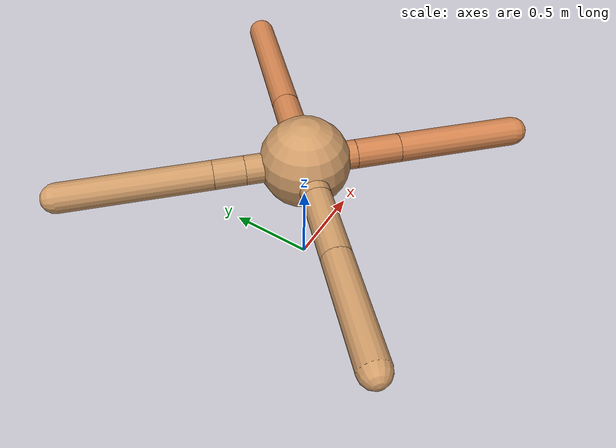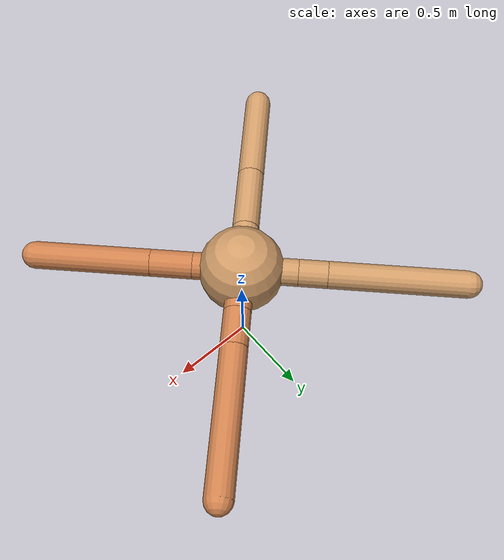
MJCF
<mujoco model="ant">
  <compiler angle="degree" coordinate="local" inertiafromgeom="true" />
  <option integrator="RK4" timestep="0.01" />
  <custom>
    <numeric data="0.0 0.0 0.55 1.0 0.0 0.0 0.0 0.0 1.0 0.0 -1.0 0.0 -1.0 0.0 1.0" name="init_qpos" />
  </custom>
  <default>
    <joint armature="1" damping="1" limited="true" />
    <geom conaffinity="0" condim="3" density="5.0" friction="1.5 0.1 0.1" margin="0.01" rgba="0.8 0.6 0.4 1" />
  </default>
  <worldbody>
    <body name="torso" pos="0 0 0.75">
      <geom name="torso_geom" pos="0 0 0" size="0.25" type="sphere" />

      <body name="front_left_leg" pos="0 0 0">
        <geom fromto="0.0 0.0 0.0 0.2 0.2 0.0" name="aux_1_geom" size="0.08" type="capsule" rgba=".8 .5 .3 1" />
        <body name="aux_1" pos="0.2 0.2 0.0">
          <joint axis="0 0 1" name="hip_1" pos="0.0 0.0 0.0" range="-40 40" type="hinge" />
          <geom fromto="0.0 0.0 0.0 0.1583501040237657 0.1583501040237657 0.0" name="left_leg_geom" size="0.08" type="capsule" rgba=".8 .5 .3 1" />
          <body pos="0.1583501040237657 0.1583501040237657 0.0" name="front_left_foot">
            <joint axis="-1 1 0" name="ankle_1" pos="0.0 0.0 0.0" range="30 100" type="hinge" />
            <geom fromto="0.0 0.0 0.0 0.592773262966544 0.592773262966544 0.0" name="left_ankle_geom" size="0.08" type="capsule" rgba=".8 .5 .3 1" />
          </body>
        </body>
      </body>
      <body name="front_right_leg" pos="0 0 0">
        <geom fromto="0.0 0.0 0.0 -0.23207161594882428 0.23207161594882428 0.0" name="aux_2_geom" size="0.08" type="capsule" />
        <body name="aux_2" pos="-0.23207161594882428 0.23207161594882428 0.0">
          <joint axis="0 0 1" name="hip_2" pos="0.0 0.0 0.0" range="-40 40" type="hinge" />
          <geom fromto="0.0 0.0 0.0 -0.12004156768740862 0.12004156768740862 0.0" name="right_leg_geom" size="0.08" type="capsule" />
          <body pos="-0.12004156768740862 0.12004156768740862 0.0" name="front_right_foot">
            <joint axis="1 1 0" name="ankle_2" pos="0.0 0.0 0.0" range="-100 -30" type="hinge" />
            <geom fromto="0.0 0.0 0.0 -0.5689873220746708 0.5689873220746708 0.0" name="right_ankle_geom" size="0.08" type="capsule" />
          </body>
        </body>
      </body>
      <body name="left_back_leg" pos="0 0 0">
        <geom fromto="0.0 0.0 0.0 -0.2 -0.2 0.0" name="aux_3_geom" size="0.08" type="capsule" />
        <body name="aux_3" pos="-0.2 -0.2 0.0">
          <joint axis="0 0 1" name="hip_3" pos="0.0 0.0 0.0" range="-40 40" type="hinge" />
          <geom fromto="0.0 0.0 0.0 -0.2776257884620148 -0.2776257884620148 0.0" name="back_leg_geom" size="0.08" type="capsule" />
          <body pos="-0.2776257884620148 -0.2776257884620148 0.0" name="left_back_foot">
            <joint axis="-1 1 0" name="ankle_3" pos="0.0 0.0 0.0" range="-100 -30" type="hinge" />
            <geom fromto="0.0 0.0 0.0 -0.41667932233289556 -0.41667932233289556 0.0" name="third_ankle_geom" size="0.08" type="capsule" />
          </body>
        </body>
      </body>
      <body name="right_back_leg" pos="0 0 0">
        <geom fromto="0.0 0.0 0.0 0.2 -0.2 0.0" name="aux_4_geom" size="0.08" type="capsule" rgba=".8 .5 .3 1" />
        <body name="aux_4" pos="0.2 -0.2 0.0">
          <joint axis="0 0 1" name="hip_4" pos="0.0 0.0 0.0" range="-40 40" type="hinge" />
          <geom fromto="0.0 0.0 0.0 0.1743686383957752 -0.1743686383957752 0.0" name="rightback_leg_geom" size="0.08" type="capsule" rgba=".8 .5 .3 1" />
          <body pos="0.1743686383957752 -0.1743686383957752 0.0" name="right_back_foot">
            <joint axis="1 1 0" name="ankle_4" pos="0.0 0.0 0.0" range="30 100" type="hinge" />
            <geom fromto="0.0 0.0 0.0 0.4780824203788381 -0.4780824203788381 0.0" name="fourth_ankle_geom" size="0.08" type="capsule" rgba=".8 .5 .3 1" />
          </body>
        </body>
      </body>
    </body>
  </worldbody>
  <actuator>
    <motor ctrllimited="true" ctrlrange="-1.0 1.0" joint="hip_4" gear="150" />
    <motor ctrllimited="true" ctrlrange="-1.0 1.0" joint="ankle_4" gear="150" />
    <motor ctrllimited="true" ctrlrange="-1.0 1.0" joint="hip_1" gear="150" />
    <motor ctrllimited="true" ctrlrange="-1.0 1.0" joint="ankle_1" gear="150" />
    <motor ctrllimited="true" ctrlrange="-1.0 1.0" joint="hip_2" gear="150" />
    <motor ctrllimited="true" ctrlrange="-1.0 1.0" joint="ankle_2" gear="150" />
    <motor ctrllimited="true" ctrlrange="-1.0 1.0" joint="hip_3" gear="150" />
    <motor ctrllimited="true" ctrlrange="-1.0 1.0" joint="ankle_3" gear="150" />
  </actuator>
</mujoco>
